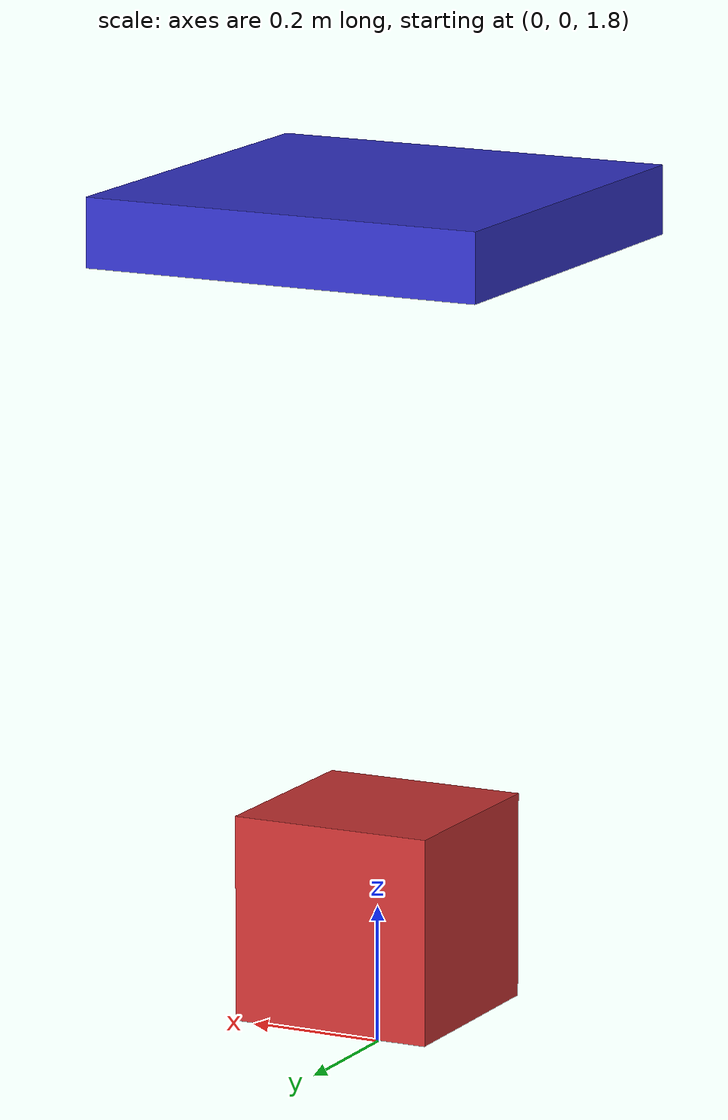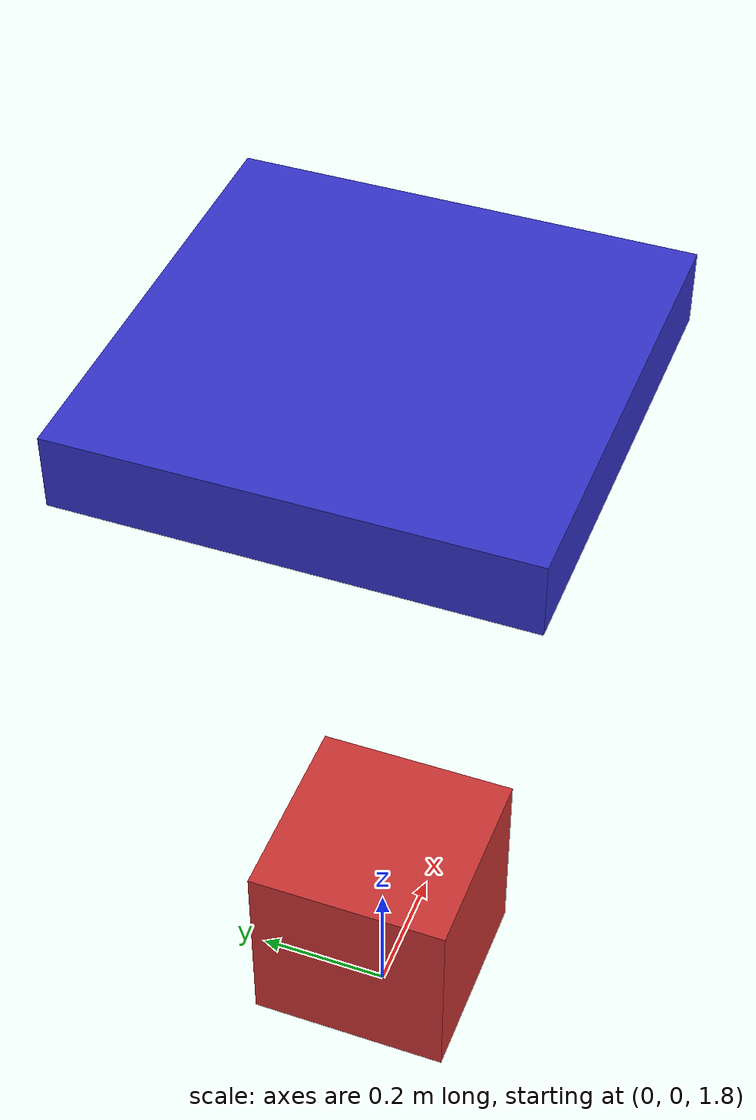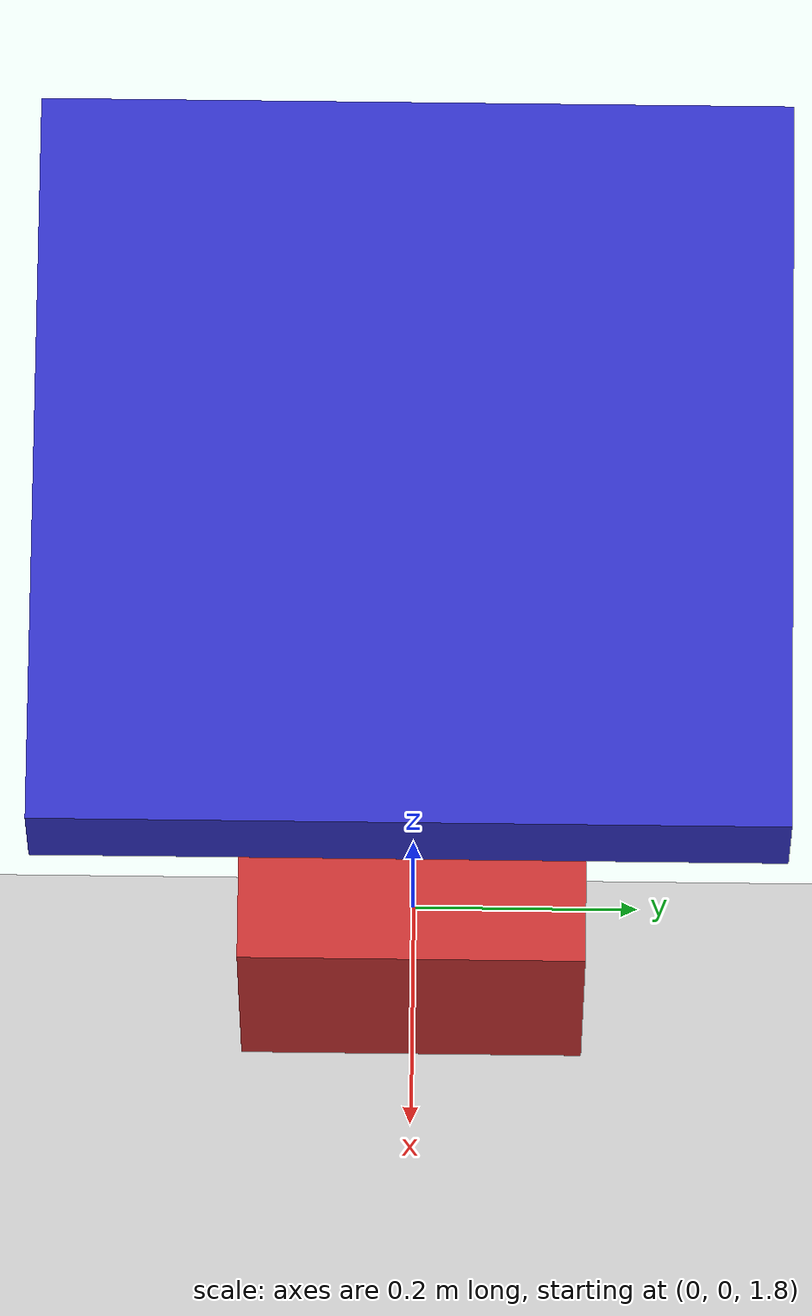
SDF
<?xml version="1.0" ?>
<sdf version="1.9">
  <world name="spring_mass_world">

    <!-- ==================== PHYSICS ==================== -->
    <physics name="1ms" type="ode">
      <max_step_size>0.001</max_step_size>
      <real_time_factor>1.0</real_time_factor>
      <real_time_update_rate>1000</real_time_update_rate>
    </physics>

    <!-- ==================== PLUGINS ==================== -->
    <plugin filename="gz-sim-physics-system"
            name="gz::sim::systems::Physics">
    </plugin>
    <plugin filename="gz-sim-scene-broadcaster-system"
            name="gz::sim::systems::SceneBroadcaster">
    </plugin>
    <plugin filename="gz-sim-user-commands-system"
            name="gz::sim::systems::UserCommands">
    </plugin>

    <!-- ==================== LIGHTING ==================== -->
    <light type="directional" name="sun">
      <cast_shadows>true</cast_shadows>
      <pose>0 0 10 0 0 0</pose>
      <diffuse>1 1 1 1</diffuse>
      <specular>0.5 0.5 0.5 1</specular>
      <direction>-0.5 0.1 -0.9</direction>
    </light>

    <!-- ==================== GROUND PLANE ==================== -->
    <model name="ground_plane">
      <static>true</static>
      <link name="ground_link">
        <collision name="collision">
          <geometry>
            <plane>
              <normal>0 0 1</normal>
              <size>100 100</size>
            </plane>
          </geometry>
        </collision>
        <visual name="visual">
          <geometry>
            <plane>
              <normal>0 0 1</normal>
              <size>100 100</size>
            </plane>
          </geometry>
          <material>
            <ambient>0.8 0.8 0.8 1</ambient>
            <diffuse>0.8 0.8 0.8 1</diffuse>
          </material>
        </visual>
      </link>
    </model>

    <!-- ==================== SPRING-MASS-DAMPER MODEL ==================== -->
    <model name="spring_mass_damper">

      <!-- Anchor/Base (fixed to world) -->
      <link name="base_link">
        <pose>0 0 3.0 0 0 0</pose>
        <visual name="base_visual">
          <geometry>
            <box>
              <size>0.6 0.6 0.1</size>
            </box>
          </geometry>
          <material>
            <ambient>0.2 0.2 0.8 1</ambient>
            <diffuse>0.2 0.2 0.8 1</diffuse>
          </material>
        </visual>
        <collision name="base_collision">
          <geometry>
            <box>
              <size>0.6 0.6 0.1</size>
            </box>
          </geometry>
        </collision>
        <inertial>
          <mass>1000.0</mass>
          <inertia>
            <ixx>10.0</ixx>
            <iyy>10.0</iyy>
            <izz>10.0</izz>
          </inertia>
        </inertial>
      </link>

      <!-- Fix base to the world so it doesn't fall -->
      <joint name="world_to_base" type="fixed">
        <parent>world</parent>
        <child>base_link</child>
      </joint>

      <!-- Mass (the box that oscillates) -->
      <link name="mass_link">
        <pose>0 0 2.0 0 0 0</pose>
        <visual name="mass_visual">
          <geometry>
            <box>
              <size>0.3 0.3 0.3</size>
            </box>
          </geometry>
          <material>
            <ambient>0.8 0.2 0.2 1</ambient>
            <diffuse>0.8 0.2 0.2 1</diffuse>
          </material>
        </visual>
        <collision name="mass_collision">
          <geometry>
            <box>
              <size>0.3 0.3 0.3</size>
            </box>
          </geometry>
        </collision>
        <inertial>
          <mass>5.0</mass>
          <inertia>
            <ixx>0.0375</ixx>
            <iyy>0.0375</iyy>
            <izz>0.0375</izz>
          </inertia>
        </inertial>
      </link>

      <!-- PRISMATIC JOINT = Spring + Damper -->
      <joint name="spring_joint" type="prismatic">
        <parent>base_link</parent>
        <child>mass_link</child>
        <axis>
          <xyz>0 0 1</xyz>
          <limit>
            <lower>-2.0</lower>
            <upper>1.0</upper>
            <effort>1000</effort>
            <velocity>10</velocity>
          </limit>
          <dynamics>
            <spring_stiffness>200.0</spring_stiffness>
            <spring_reference>-1.0</spring_reference>
            <damping>10.0</damping>
            <friction>0.0</friction>
          </dynamics>
        </axis>
      </joint>

      <!-- Plugin: Publish joint states to Gazebo topics -->
      <plugin filename="gz-sim-joint-state-publisher-system"
              name="gz::sim::systems::JointStatePublisher">
        <joint_name>spring_joint</joint_name>
      </plugin>

      <!-- Plugin: Allow applying force commands to the joint -->
      <plugin filename="gz-sim-apply-joint-force-system"
              name="gz::sim::systems::ApplyJointForce">
        <joint_name>spring_joint</joint_name>
      </plugin>

    </model>

  </world>
</sdf>
